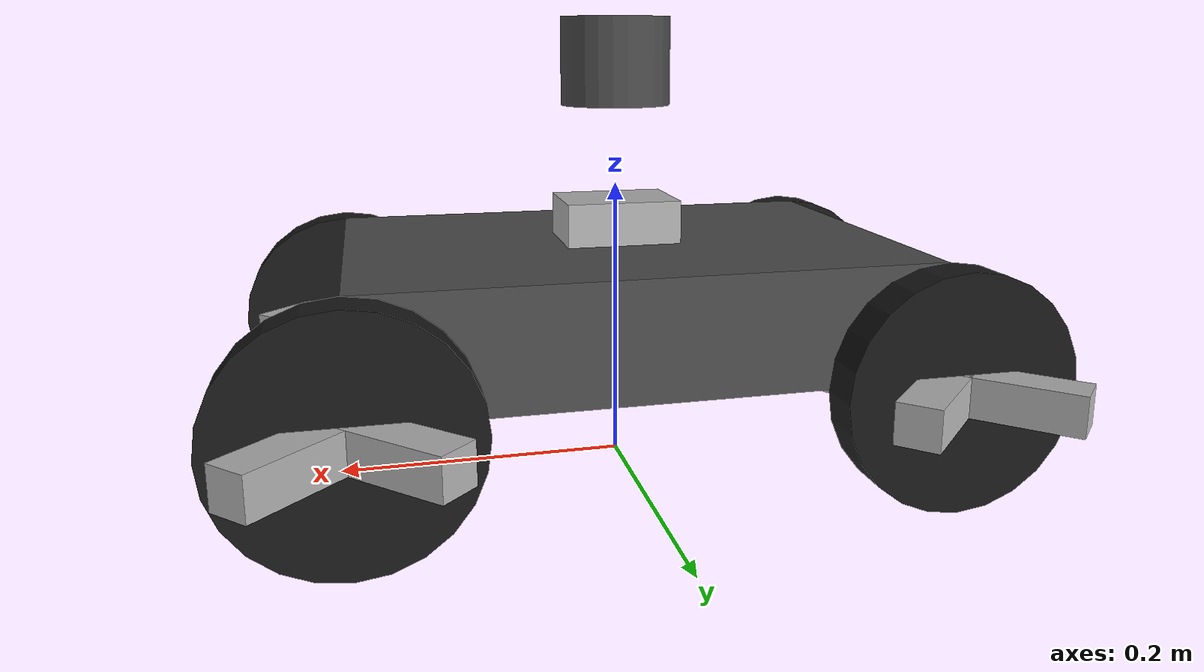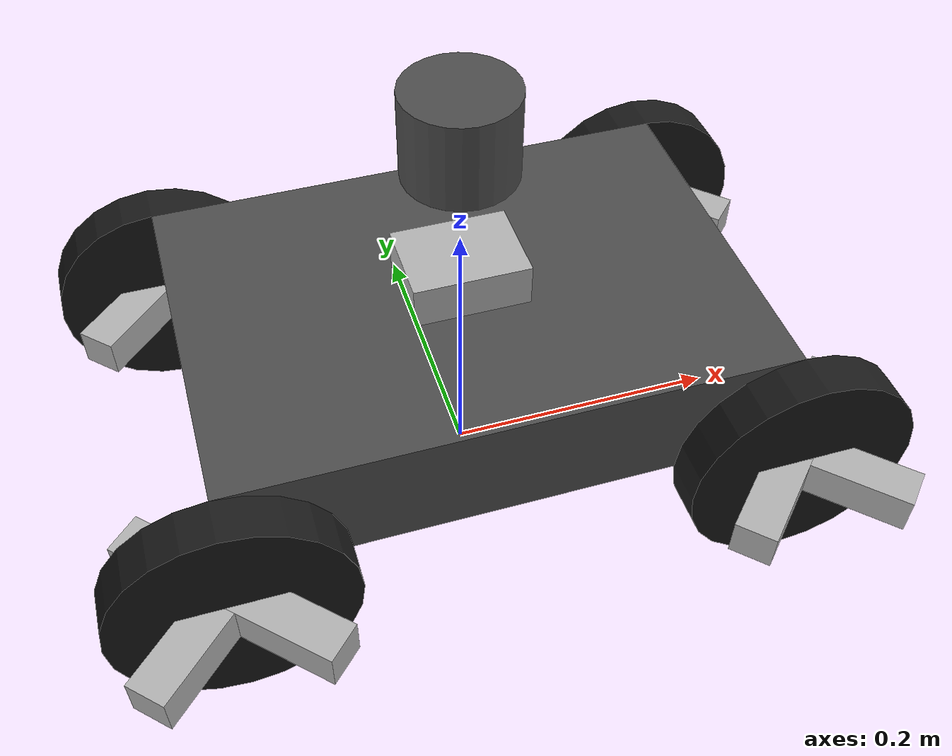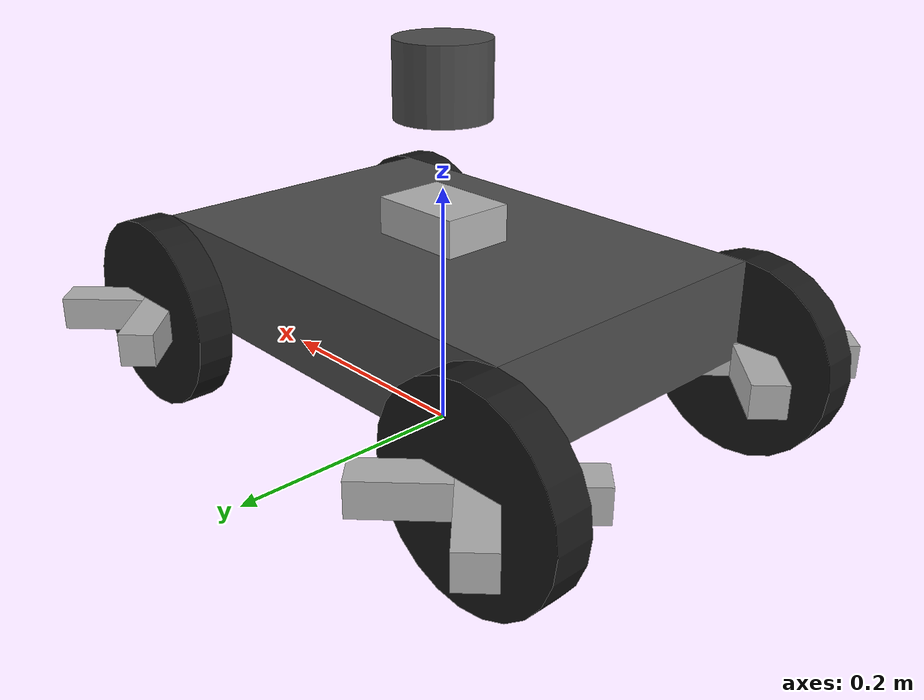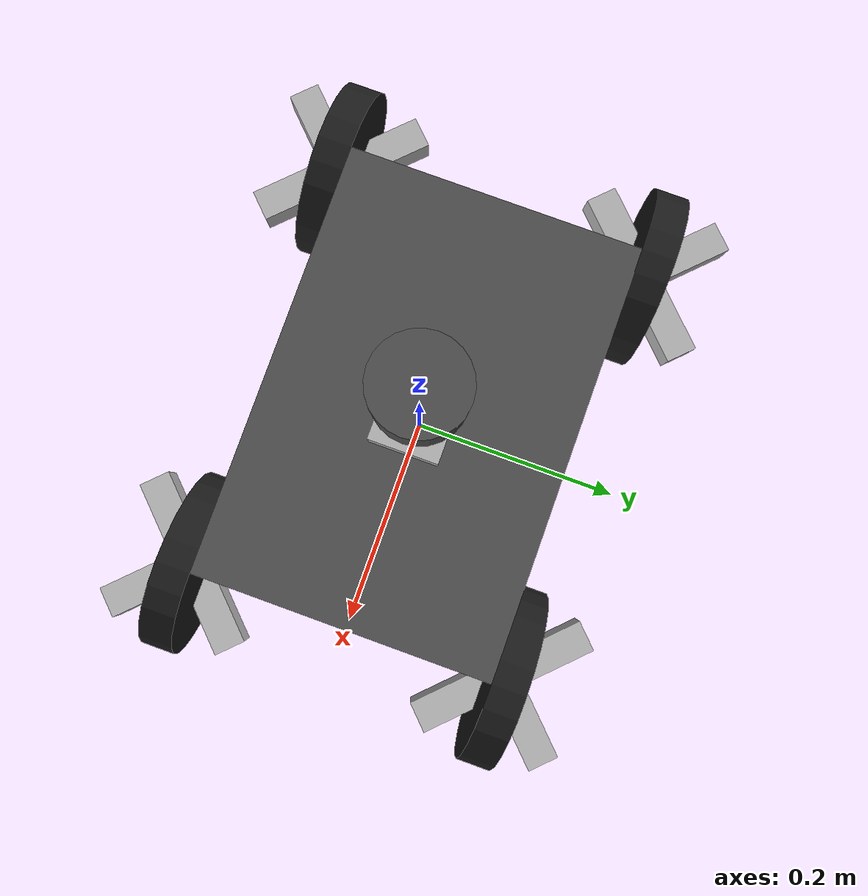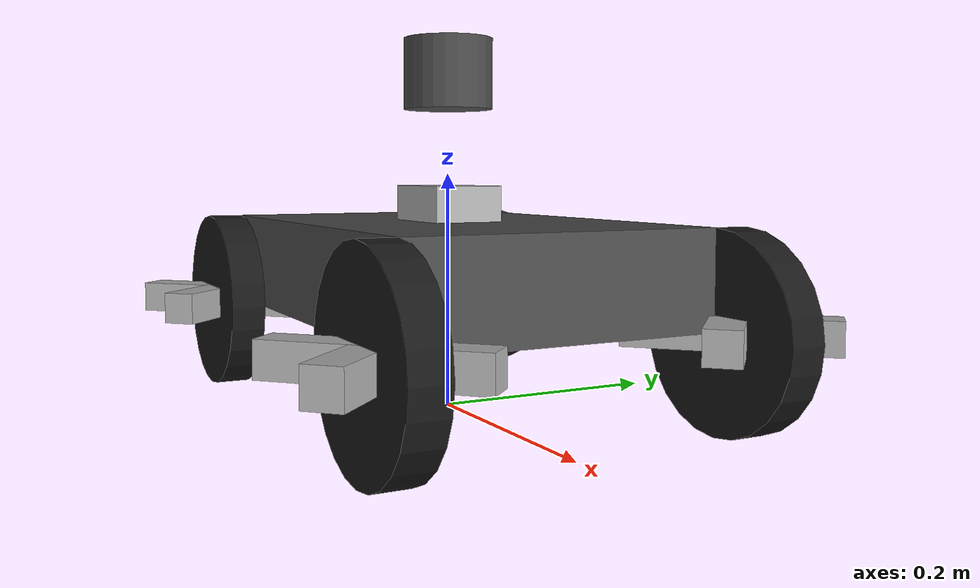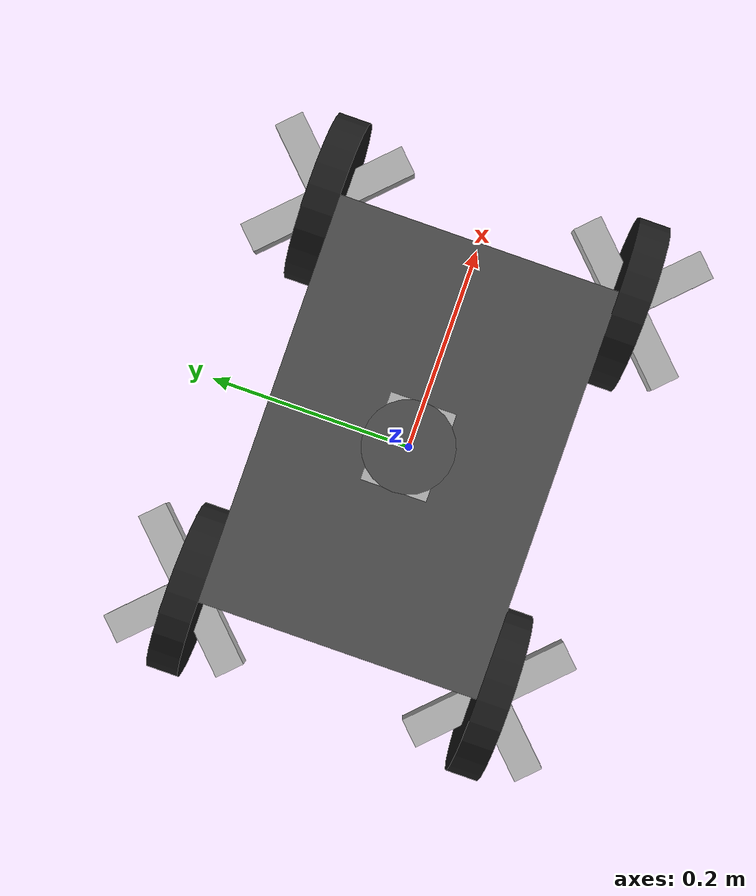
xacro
<?xml version="1.0"?>
<robot name="ecza_rover" xmlns:xacro="http://www.ros.org/wiki/xacro">

  <!-- ── Parameters ─────────────────────────────────────────────────────── -->
  <xacro:property name="chassis_length"    value="0.38"/>  <!-- wheel_base -->
  <xacro:property name="chassis_width"     value="0.26"/>  <!-- wheel_separation_width -->
  <xacro:property name="chassis_height"    value="0.08"/>
  <xacro:property name="chassis_mass"      value="3.0"/>   <!-- kg, estimate -->

  <xacro:property name="wheel_radius"      value="0.08"/>  <!-- must match rover_params.yaml and controllers.yaml -->
  <xacro:property name="wheel_width"       value="0.03"/>
  <xacro:property name="wheel_mass"        value="0.15"/>

  <!-- Half-extents for convenience -->
  <xacro:property name="cl2" value="${chassis_length/2}"/>
  <xacro:property name="cw2" value="${chassis_width/2}"/>
  <xacro:property name="ch2" value="${chassis_height/2}"/>

  <!-- Chassis sits so its bottom is at wheel_radius height above footprint -->
  <xacro:property name="chassis_z" value="${wheel_radius + ch2}"/>

  <!-- ── Material colours ───────────────────────────────────────────────── -->
  <material name="chassis_grey">
    <color rgba="0.3 0.3 0.3 1.0"/>
  </material>
  <material name="wheel_black">
    <color rgba="0.1 0.1 0.1 1.0"/>
  </material>
  <material name="axle_silver">
    <color rgba="0.7 0.7 0.7 1.0"/>
  </material>

  <!-- ── Inertia macros ─────────────────────────────────────────────────── -->
  <xacro:macro name="box_inertia" params="m x y z">
    <inertial>
      <mass value="${m}"/>
      <inertia
        ixx="${m*(y*y+z*z)/12}" ixy="0" ixz="0"
        iyy="${m*(x*x+z*z)/12}" iyz="0"
        izz="${m*(x*x+y*y)/12}"/>
    </inertial>
  </xacro:macro>

  <xacro:macro name="cylinder_inertia" params="m r h">
    <inertial>
      <mass value="${m}"/>
      <inertia
        ixx="${m*(3*r*r+h*h)/12}" ixy="0" ixz="0"
        iyy="${m*(3*r*r+h*h)/12}" iyz="0"
        izz="${m*r*r/2}"/>
    </inertial>
  </xacro:macro>

  <!-- ── base_footprint ─────────────────────────────────────────────────── -->
  <link name="base_footprint"/>

  <joint name="base_footprint_joint" type="fixed">
    <parent link="base_footprint"/>
    <child  link="base_link"/>
    <origin xyz="0 0 ${wheel_radius}" rpy="0 0 0"/>
  </joint>

  <!-- ── base_link (chassis) ────────────────────────────────────────────── -->
  <link name="base_link">
    <visual>
      <origin xyz="0 0 ${ch2}" rpy="0 0 0"/>
      <geometry>
        <box size="${chassis_length} ${chassis_width} ${chassis_height}"/>
      </geometry>
      <material name="chassis_grey"/>
    </visual>
    <collision>
      <origin xyz="0 0 ${ch2}" rpy="0 0 0"/>
      <geometry>
        <box size="${chassis_length} ${chassis_width} ${chassis_height}"/>
      </geometry>
    </collision>
    <xacro:box_inertia m="${chassis_mass}" x="${chassis_length}" y="${chassis_width}" z="${chassis_height}"/>
  </link>

  <!-- ESP32 / electronics box on top of chassis -->
  <link name="electronics_link">
    <visual>
      <origin xyz="0 0 0" rpy="0 0 0"/>
      <geometry>
        <box size="0.08 0.06 0.03"/>
      </geometry>
      <material name="axle_silver"/>
    </visual>
    <collision>
      <origin xyz="0 0 0"/>
      <geometry><box size="0.08 0.06 0.03"/></geometry>
    </collision>
    <xacro:box_inertia m="0.05" x="0.08" y="0.06" z="0.03"/>
  </link>

  <joint name="electronics_joint" type="fixed">
    <parent link="base_link"/>
    <child  link="electronics_link"/>
    <origin xyz="0 0 ${chassis_height + 0.015}" rpy="0 0 0"/>
  </joint>

  <!-- ── Mecanum wheel macro ───────────────────────────────────────────── -->
  <xacro:macro name="mecanum_wheel" params="name x_pos y_pos roller_angle axis_y">
    <link name="${name}_wheel_link">
      <!-- Main wheel drum -->
      <visual>
        <origin xyz="0 0 0" rpy="${pi/2} 0 0"/>
        <geometry>
          <cylinder radius="${wheel_radius}" length="${wheel_width}"/>
        </geometry>
        <material name="wheel_black"/>
      </visual>
      <!-- Roller 1 — large diagonal indicator at roller_angle -->
      <visual>
        <origin xyz="0 0 0" rpy="${pi/2} 0 ${roller_angle}"/>
        <geometry>
          <box size="${wheel_radius*2.05} ${wheel_width*0.9} ${wheel_radius*0.35}"/>
        </geometry>
        <material name="axle_silver"/>
      </visual>
      <!-- Roller 2 — opposite side -->
      <visual>
        <origin xyz="0 0 0" rpy="${pi/2} 0 ${roller_angle + pi/2}"/>
        <geometry>
          <box size="${wheel_radius*2.05} ${wheel_width*0.9} ${wheel_radius*0.35}"/>
        </geometry>
        <material name="axle_silver"/>
      </visual>
      <collision>
        <origin xyz="0 0 0" rpy="${pi/2} 0 0"/>
        <geometry>
          <cylinder radius="${wheel_radius}" length="${wheel_width}"/>
        </geometry>
      </collision>
      <xacro:cylinder_inertia m="${wheel_mass}" r="${wheel_radius}" h="${wheel_width}"/>
    </link>

    <joint name="${name}_wheel_joint" type="continuous">
      <parent link="base_link"/>
      <child  link="${name}_wheel_link"/>
      <origin xyz="${x_pos} ${y_pos} 0" rpy="0 0 0"/>
      <axis xyz="0 ${axis_y} 0"/>
      <dynamics damping="0.01" friction="0.1"/>
    </joint>
  </xacro:macro>

  <!-- Instantiate 4 mecanum wheels
       FL/RR: roller_angle = +pi/4  (/ rollers — standard mecanum)
       FR/RL: roller_angle = -pi/4  (\ rollers)
  -->
  <xacro:mecanum_wheel name="fl" x_pos=" ${cl2}" y_pos=" ${cw2 + wheel_width/2}" roller_angle=" ${pi/4}" axis_y= "1"/>
  <xacro:mecanum_wheel name="fr" x_pos=" ${cl2}" y_pos="-${cw2 + wheel_width/2}" roller_angle="-${pi/4}" axis_y="-1"/>
  <xacro:mecanum_wheel name="rl" x_pos="-${cl2}" y_pos=" ${cw2 + wheel_width/2}" roller_angle="-${pi/4}" axis_y= "1"/>
  <xacro:mecanum_wheel name="rr" x_pos="-${cl2}" y_pos="-${cw2 + wheel_width/2}" roller_angle=" ${pi/4}" axis_y="-1"/>

  <!-- ── IMU frame (centred on chassis top) ─────────────────────────────── -->
  <link name="imu_link"/>
  <joint name="imu_joint" type="fixed">
    <parent link="base_link"/>
    <child  link="imu_link"/>
    <origin xyz="0 0 ${chassis_height}" rpy="0 0 0"/>
  </joint>

  <!-- ── RPLidar A2M12 ─────────────────────────────────────────────────── -->
  <link name="laser_frame">
    <visual>
      <geometry>
        <cylinder radius="0.038" length="0.060"/>
      </geometry>
      <material name="chassis_grey"/>
    </visual>
    <collision>
      <geometry>
        <cylinder radius="0.038" length="0.060"/>
      </geometry>
    </collision>
    <xacro:cylinder_inertia m="0.17" r="0.038" h="0.060"/>
  </link>

  <joint name="laser_joint" type="fixed">
    <parent link="base_link"/>
    <child  link="laser_frame"/>
    <!--
      x=0 : centred front-back
      y=0 : centred left-right
      z   : top of chassis + 15 mm standoff + 30 mm to laser plane
    -->
    <origin xyz="0.0 0.0 ${chassis_z + ch2 + 0.045}" rpy="0 0 3.14159"/>
  </joint>

  <!-- ── ros2_control — topic_based hardware interface ─────────────────── -->
  <ros2_control name="ecza_rover_hardware" type="system">
    <hardware>
      <plugin>topic_based_ros2_control/TopicBasedSystem</plugin>
      <param name="joint_commands_topic">/wheel_velocities_cmd</param>
      <param name="joint_states_topic">/wheel_velocities_js</param>
      <param name="trigger_joint_command_threshold">-1.0</param>
    </hardware>

    <joint name="fl_wheel_joint">
      <command_interface name="velocity"/>
      <state_interface name="velocity"/>
      <state_interface name="position"/>
    </joint>
    <joint name="fr_wheel_joint">
      <command_interface name="velocity"/>
      <state_interface name="velocity"/>
      <state_interface name="position"/>
    </joint>
    <joint name="rl_wheel_joint">
      <command_interface name="velocity"/>
      <state_interface name="velocity"/>
      <state_interface name="position"/>
    </joint>
    <joint name="rr_wheel_joint">
      <command_interface name="velocity"/>
      <state_interface name="velocity"/>
      <state_interface name="position"/>
    </joint>
  </ros2_control>

</robot>
